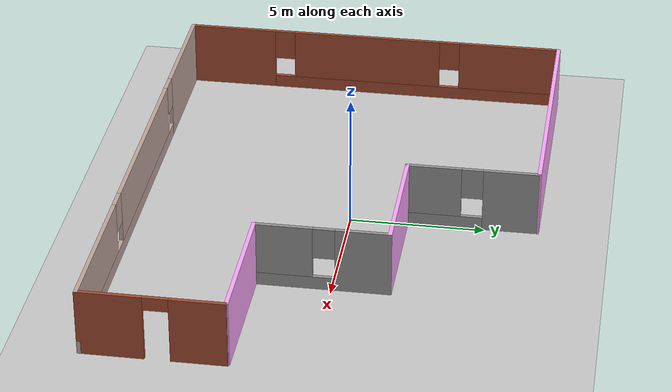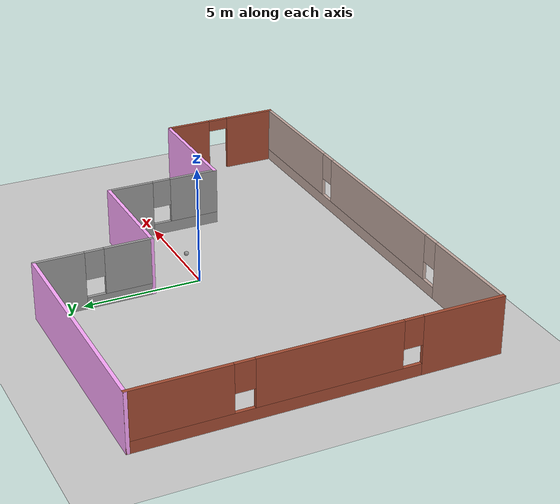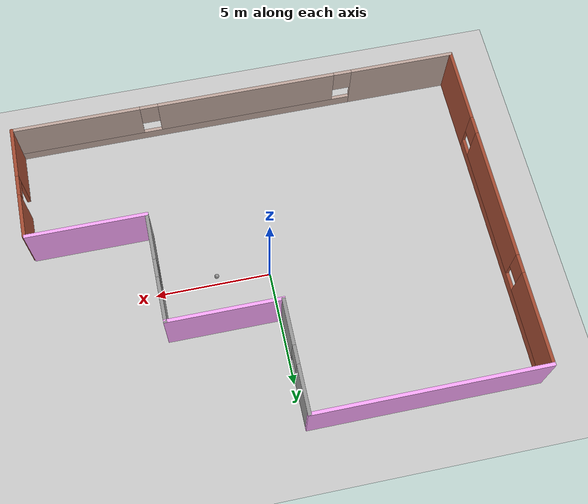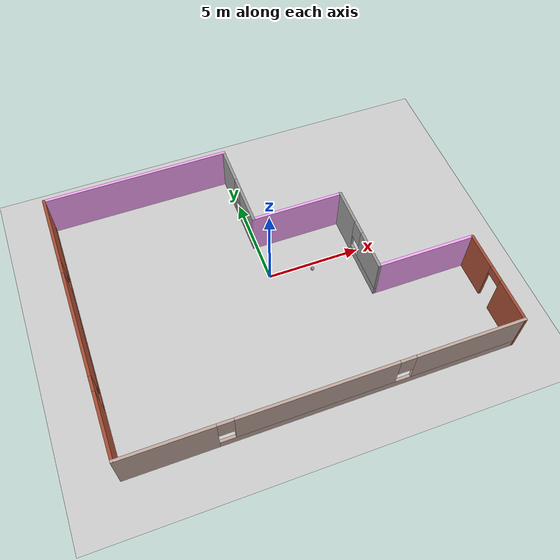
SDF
<sdf version="1.6">
 <world name="default">
  <plugin name="hello" filename="libhello.so"/>
  <light name="sun" type="directional">
   <pose>0 0 10 0 -0 0</pose>
   <diffuse>0.8 0.8 0.8 1</diffuse>
   <specular>0.2 0.2 0.2 1</specular>
   <attenuation>
    <range>1000</range>
    <constant>0.9</constant>
    <linear>0.01</linear>
    <quadratic>0.001</quadratic>
   </attenuation>
   <direction>-0.5 0.1 -0.9</direction>
  </light>
  <model name="ground_plane">
   <static>1</static>
   <link name="link">
    <collision name="collision">
     <geometry><plane><normal>0 0 1</normal><size>100 100</size></plane></geometry>
     <surface>
      <contact><collide_bitmask>65535</collide_bitmask></contact>
      <friction><ode><mu>100</mu><mu2>50</mu2></ode></friction>
     </surface>
    </collision>
    <visual name="visual">
     <cast_shadows>0</cast_shadows>
     <geometry><plane><normal>0 0 1</normal><size>100 100</size></plane></geometry>
     <material>
      <script><uri>file://media/materials/scripts/gazebo.material</uri><name>Gazebo/Grey</name></script>
     </material>
    </visual>
   </link>
  </model>
  <gravity>0 0 -9.8</gravity>
  <magnetic_field>6e-06 2.3e-05 -4.2e-05</magnetic_field>
  <atmosphere type="adiabatic"/>
  <physics name="default_physics" default="0" type="ode">
   <max_step_size>0.001</max_step_size>
   <real_time_factor>1</real_time_factor>
   <real_time_update_rate>1000</real_time_update_rate>
  </physics>
  <scene><ambient>0.4 0.4 0.4 1</ambient><background>0.7 0.7 0.7 1</background><shadows>1</shadows></scene>
  <spherical_coordinates>
   <surface_model>EARTH_WGS84</surface_model>
   <latitude_deg>0</latitude_deg>
   <longitude_deg>0</longitude_deg>
   <elevation>0</elevation>
   <heading_deg>0</heading_deg>
  </spherical_coordinates>
  <model name="STRUCTURE">
   <pose>-0.05694 -0.492989 0 0 -0 0</pose>
   <link name="Wall_0">
    <pose>-9.925 0 0 0 -0 1.57082</pose>
    <visual name="Wall_0_Visual_0">
     <pose>-5.76323 0 1.25 0 -0 0</pose>
     <geometry><box><size>3.47353 0.15 2.5</size></box></geometry>
     <material>
      <script><uri>file://media/materials/scripts/gazebo.material</uri><name>Gazebo/Bricks</name></script>
      <ambient>1 1 1 1</ambient>
     </material>
     <meta><layer>0</layer></meta>
    </visual>
    <collision name="Wall_0_Collision_0">
     <geometry><box><size>3.47353 0.15 2.5</size></box></geometry>
     <pose>-5.76323 0 1.25 0 -0 0</pose>
    </collision>
    <visual name="Wall_0_Visual_1">
     <pose>1.73676 0 0.25 0 -0 0</pose>
     <geometry><box><size>11.5265 0.15 0.5</size></box></geometry>
     <material>
      <script><uri>file://media/materials/scripts/gazebo.material</uri><name>Gazebo/Bricks</name></script>
      <ambient>1 1 1 1</ambient>
     </material>
     <meta><layer>0</layer></meta>
    </visual>
    <collision name="Wall_0_Collision_1">
     <geometry><box><size>11.5265 0.15 0.5</size></box></geometry>
     <pose>1.73676 0 0.25 0 -0 0</pose>
    </collision>
    <visual name="Wall_0_Visual_2">
     <pose>-0.28256 0 1.5 0 -0 0</pose>
     <geometry><box><size>5.88782 0.15 2</size></box></geometry>
     <material>
      <script><uri>file://media/materials/scripts/gazebo.material</uri><name>Gazebo/Bricks</name></script>
      <ambient>1 1 1 1</ambient>
     </material>
     <meta><layer>0</layer></meta>
    </visual>
    <collision name="Wall_0_Collision_2">
     <geometry><box><size>5.88782 0.15 2</size></box></geometry>
     <pose>-0.28256 0 1.5 0 -0 0</pose>
    </collision>
    <visual name="Wall_0_Visual_3">
     <pose>5.48067 0 1.5 0 -0 0</pose>
     <geometry><box><size>4.03865 0.15 2</size></box></geometry>
     <material>
      <script><uri>file://media/materials/scripts/gazebo.material</uri><name>Gazebo/Bricks</name></script>
      <ambient>1 1 1 1</ambient>
     </material>
     <meta><layer>0</layer></meta>
    </visual>
    <collision name="Wall_0_Collision_3">
     <geometry><box><size>4.03865 0.15 2</size></box></geometry>
     <pose>5.48067 0 1.5 0 -0 0</pose>
    </collision>
    <visual name="Wall_0_Visual_4">
     <pose>-3.62647 0 1.9 0 -0 0</pose>
     <geometry><box><size>0.8 0.15 1.2</size></box></geometry>
     <material>
      <script><uri>file://media/materials/scripts/gazebo.material</uri><name>Gazebo/Bricks</name></script>
      <ambient>1 1 1 1</ambient>
     </material>
     <meta><layer>0</layer></meta>
    </visual>
    <collision name="Wall_0_Collision_4">
     <geometry><box><size>0.8 0.15 1.2</size></box></geometry>
     <pose>-3.62647 0 1.9 0 -0 0</pose>
    </collision>
    <visual name="Wall_0_Visual_5">
     <pose>3.06135 0 1.9 0 -0 0</pose>
     <geometry><box><size>0.8 0.15 1.2</size></box></geometry>
     <material>
      <script><uri>file://media/materials/scripts/gazebo.material</uri><name>Gazebo/Bricks</name></script>
      <ambient>1 1 1 1</ambient>
     </material>
     <meta><layer>0</layer></meta>
    </visual>
    <collision name="Wall_0_Collision_5">
     <geometry><box><size>0.8 0.15 1.2</size></box></geometry>
     <pose>3.06135 0 1.9 0 -0 0</pose>
    </collision>
   </link>
   <link name="Wall_10">
    <collision name="Wall_10_Collision">
     <geometry><box><size>5.25 0.15 2.5</size></box></geometry>
     <pose>0 0 1.25 0 -0 0</pose>
    </collision>
    <visual name="Wall_10_Visual">
     <pose>0 0 1.25 0 -0 0</pose>
     <geometry><box><size>5.25 0.15 2.5</size></box></geometry>
     <material>
      <script><uri>file://media/materials/scripts/gazebo.material</uri><name>Gazebo/Grey</name></script>
      <ambient>1 0.666667 1 1</ambient>
     </material>
     <meta><layer>0</layer></meta>
    </visual>
    <pose>7.32518 -2.27514 0 0 -0 0</pose>
   </link>
   <link name="Wall_15">
    <pose>0.000182 -7.42514 0 0 -0 0</pose>
    <visual name="Wall_15_Visual_0">
     <pose>-7.64788 0 1.25 0 -0 0</pose>
     <geometry><box><size>4.70424 0.15 2.5</size></box></geometry>
     <material>
      <script><uri>file://media/materials/scripts/gazebo.material</uri><name>Gazebo/Grey</name></script>
      <ambient>0.760784 0.662745 0.627451 1</ambient>
     </material>
     <meta><layer>0</layer></meta>
    </visual>
    <collision name="Wall_15_Collision_0">
     <geometry><box><size>4.70424 0.15 2.5</size></box></geometry>
     <pose>-7.64788 0 1.25 0 -0 0</pose>
    </collision>
    <visual name="Wall_15_Visual_1">
     <pose>2.35212 0 0.25 0 -0 0</pose>
     <geometry><box><size>15.2958 0.15 0.5</size></box></geometry>
     <material>
      <script><uri>file://media/materials/scripts/gazebo.material</uri><name>Gazebo/Grey</name></script>
      <ambient>0.760784 0.662745 0.627451 1</ambient>
     </material>
     <meta><layer>0</layer></meta>
    </visual>
    <collision name="Wall_15_Collision_1">
     <geometry><box><size>15.2958 0.15 0.5</size></box></geometry>
     <pose>2.35212 0 0.25 0 -0 0</pose>
    </collision>
    <visual name="Wall_15_Visual_2">
     <pose>-0.508559 0 1.5 0 -0 0</pose>
     <geometry><box><size>7.97441 0.15 2</size></box></geometry>
     <material>
      <script><uri>file://media/materials/scripts/gazebo.material</uri><name>Gazebo/Grey</name></script>
      <ambient>0.760784 0.662745 0.627451 1</ambient>
     </material>
     <meta><layer>0</layer></meta>
    </visual>
    <collision name="Wall_15_Collision_2">
     <geometry><box><size>7.97441 0.15 2</size></box></geometry>
     <pose>-0.508559 0 1.5 0 -0 0</pose>
    </collision>
    <visual name="Wall_15_Visual_3">
     <pose>7.13932 0 1.5 0 -0 0</pose>
     <geometry><box><size>5.72135 0.15 2</size></box></geometry>
     <material>
      <script><uri>file://media/materials/scripts/gazebo.material</uri><name>Gazebo/Grey</name></script>
      <ambient>0.760784 0.662745 0.627451 1</ambient>
     </material>
     <meta><layer>0</layer></meta>
    </visual>
    <collision name="Wall_15_Collision_3">
     <geometry><box><size>5.72135 0.15 2</size></box></geometry>
     <pose>7.13932 0 1.5 0 -0 0</pose>
    </collision>
    <visual name="Wall_15_Visual_4">
     <pose>-4.89576 0 1.9 0 -0 0</pose>
     <geometry><box><size>0.8 0.15 1.2</size></box></geometry>
     <material>
      <script><uri>file://media/materials/scripts/gazebo.material</uri><name>Gazebo/Grey</name></script>
      <ambient>0.760784 0.662745 0.627451 1</ambient>
     </material>
     <meta><layer>0</layer></meta>
    </visual>
    <collision name="Wall_15_Collision_4">
     <geometry><box><size>0.8 0.15 1.2</size></box></geometry>
     <pose>-4.89576 0 1.9 0 -0 0</pose>
    </collision>
    <visual name="Wall_15_Visual_5">
     <pose>3.87865 0 1.9 0 -0 0</pose>
     <geometry><box><size>0.8 0.15 1.2</size></box></geometry>
     <material>
      <script><uri>file://media/materials/scripts/gazebo.material</uri><name>Gazebo/Grey</name></script>
      <ambient>0.760784 0.662745 0.627451 1</ambient>
     </material>
     <meta><layer>0</layer></meta>
    </visual>
    <collision name="Wall_15_Collision_5">
     <geometry><box><size>0.8 0.15 1.2</size></box></geometry>
     <pose>3.87865 0 1.9 0 -0 0</pose>
    </collision>
   </link>
   <link name="Wall_17">
    <pose>9.92518 -4.87514 0 0 -0 1.5708</pose>
    <visual name="Wall_17_Visual_0">
     <pose>-1.44819 0 1.25 0 -0 0</pose>
     <geometry><box><size>2.35363 0.15 2.5</size></box></geometry>
     <material>
      <script><uri>file://media/materials/scripts/gazebo.material</uri><name>Gazebo/Bricks</name></script>
      <ambient>1 1 1 1</ambient>
     </material>
     <meta><layer>0</layer></meta>
    </visual>
    <collision name="Wall_17_Collision_0">
     <geometry><box><size>2.35363 0.15 2.5</size></box></geometry>
     <pose>-1.44819 0 1.25 0 -0 0</pose>
    </collision>
    <visual name="Wall_17_Visual_1">
     <pose>1.62681 0 1.25 0 -0 0</pose>
     <geometry><box><size>1.99637 0.15 2.5</size></box></geometry>
     <material>
      <script><uri>file://media/materials/scripts/gazebo.material</uri><name>Gazebo/Bricks</name></script>
      <ambient>1 1 1 1</ambient>
     </material>
     <meta><layer>0</layer></meta>
    </visual>
    <collision name="Wall_17_Collision_1">
     <geometry><box><size>1.99637 0.15 2.5</size></box></geometry>
     <pose>1.62681 0 1.25 0 -0 0</pose>
    </collision>
    <visual name="Wall_17_Visual_2">
     <pose>0.178628 0 2.25 0 -0 0</pose>
     <geometry><box><size>0.9 0.15 0.5</size></box></geometry>
     <material>
      <script><uri>file://media/materials/scripts/gazebo.material</uri><name>Gazebo/Bricks</name></script>
      <ambient>1 1 1 1</ambient>
     </material>
     <meta><layer>0</layer></meta>
    </visual>
    <collision name="Wall_17_Collision_2">
     <geometry><box><size>0.9 0.15 0.5</size></box></geometry>
     <pose>0.178628 0 2.25 0 -0 0</pose>
    </collision>
   </link>
   <link name="Wall_2">
    <collision name="Wall_2_Collision">
     <geometry><box><size>10 0.15 2.5</size></box></geometry>
     <pose>0 0 1.25 0 -0 0</pose>
    </collision>
    <visual name="Wall_2_Visual">
     <pose>0 0 1.25 0 -0 0</pose>
     <geometry><box><size>10 0.15 2.5</size></box></geometry>
     <material>
      <script><uri>file://media/materials/scripts/gazebo.material</uri><name>Gazebo/Grey</name></script>
      <ambient>1 0.666667 1 1</ambient>
     </material>
     <meta><layer>0</layer></meta>
    </visual>
    <pose>-5.00018 7.42514 0 0 -0 0</pose>
   </link>
   <link name="Wall_4">
    <pose>-0.074999 5 0 0 0 -1.57072</pose>
    <visual name="Wall_4_Visual_0">
     <pose>-1.44372 0 1.25 0 -0 0</pose>
     <geometry><box><size>2.11257 0.15 2.5</size></box></geometry>
     <material>
      <script><uri>file://media/materials/scripts/gazebo.material</uri><name>Gazebo/Grey</name></script>
      <ambient>1 1 1 1</ambient>
     </material>
     <meta><layer>0</layer></meta>
    </visual>
    <collision name="Wall_4_Collision_0">
     <geometry><box><size>2.11257 0.15 2.5</size></box></geometry>
     <pose>-1.44372 0 1.25 0 -0 0</pose>
    </collision>
    <visual name="Wall_4_Visual_1">
     <pose>1.05628 0 0.25 0 -0 0</pose>
     <geometry><box><size>2.88743 0.15 0.5</size></box></geometry>
     <material>
      <script><uri>file://media/materials/scripts/gazebo.material</uri><name>Gazebo/Grey</name></script>
      <ambient>1 1 1 1</ambient>
     </material>
     <meta><layer>0</layer></meta>
    </visual>
    <collision name="Wall_4_Collision_1">
     <geometry><box><size>2.88743 0.15 0.5</size></box></geometry>
     <pose>1.05628 0 0.25 0 -0 0</pose>
    </collision>
    <visual name="Wall_4_Visual_2">
     <pose>1.45628 0 1.5 0 -0 0</pose>
     <geometry><box><size>2.08743 0.15 2</size></box></geometry>
     <material>
      <script><uri>file://media/materials/scripts/gazebo.material</uri><name>Gazebo/Grey</name></script>
      <ambient>1 1 1 1</ambient>
     </material>
     <meta><layer>0</layer></meta>
    </visual>
    <collision name="Wall_4_Collision_2">
     <geometry><box><size>2.08743 0.15 2</size></box></geometry>
     <pose>1.45628 0 1.5 0 -0 0</pose>
    </collision>
    <visual name="Wall_4_Visual_3">
     <pose>0.012568 0 1.9 0 -0 0</pose>
     <geometry><box><size>0.8 0.15 1.2</size></box></geometry>
     <material>
      <script><uri>file://media/materials/scripts/gazebo.material</uri><name>Gazebo/Grey</name></script>
      <ambient>1 1 1 1</ambient>
     </material>
     <meta><layer>0</layer></meta>
    </visual>
    <collision name="Wall_4_Collision_3">
     <geometry><box><size>0.8 0.15 1.2</size></box></geometry>
     <pose>0.012568 0 1.9 0 -0 0</pose>
    </collision>
   </link>
   <link name="Wall_6">
    <collision name="Wall_6_Collision">
     <geometry><box><size>5 0.15 2.5</size></box></geometry>
     <pose>0 0 1.25 0 -0 0</pose>
    </collision>
    <visual name="Wall_6_Visual">
     <pose>0 0 1.25 0 -0 0</pose>
     <geometry><box><size>5 0.15 2.5</size></box></geometry>
     <material>
      <script><uri>file://media/materials/scripts/gazebo.material</uri><name>Gazebo/Grey</name></script>
      <ambient>1 0.666667 1 1</ambient>
     </material>
     <meta><layer>0</layer></meta>
    </visual>
    <pose>2.35018 2.57486 0 0 -0 0</pose>
   </link>
   <link name="Wall_8">
    <pose>4.77518 0.149856 0 0 0 -1.5708</pose>
    <visual name="Wall_8_Visual_0">
     <pose>-1.48793 0 1.25 0 -0 0</pose>
     <geometry><box><size>2.02414 0.15 2.5</size></box></geometry>
     <material>
      <script><uri>file://media/materials/scripts/gazebo.material</uri><name>Gazebo/Grey</name></script>
      <ambient>1 1 1 1</ambient>
     </material>
     <meta><layer>0</layer></meta>
    </visual>
    <collision name="Wall_8_Collision_0">
     <geometry><box><size>2.02414 0.15 2.5</size></box></geometry>
     <pose>-1.48793 0 1.25 0 -0 0</pose>
    </collision>
    <visual name="Wall_8_Visual_1">
     <pose>1.01207 0 0.25 0 -0 0</pose>
     <geometry><box><size>2.97586 0.15 0.5</size></box></geometry>
     <material>
      <script><uri>file://media/materials/scripts/gazebo.material</uri><name>Gazebo/Grey</name></script>
      <ambient>1 1 1 1</ambient>
     </material>
     <meta><layer>0</layer></meta>
    </visual>
    <collision name="Wall_8_Collision_1">
     <geometry><box><size>2.97586 0.15 0.5</size></box></geometry>
     <pose>1.01207 0 0.25 0 -0 0</pose>
    </collision>
    <visual name="Wall_8_Visual_2">
     <pose>1.41207 0 1.5 0 -0 0</pose>
     <geometry><box><size>2.17586 0.15 2</size></box></geometry>
     <material>
      <script><uri>file://media/materials/scripts/gazebo.material</uri><name>Gazebo/Grey</name></script>
      <ambient>1 1 1 1</ambient>
     </material>
     <meta><layer>0</layer></meta>
    </visual>
    <collision name="Wall_8_Collision_2">
     <geometry><box><size>2.17586 0.15 2</size></box></geometry>
     <pose>1.41207 0 1.5 0 -0 0</pose>
    </collision>
    <visual name="Wall_8_Visual_3">
     <pose>-0.075858 0 1.9 0 -0 0</pose>
     <geometry><box><size>0.8 0.15 1.2</size></box></geometry>
     <material>
      <script><uri>file://media/materials/scripts/gazebo.material</uri><name>Gazebo/Grey</name></script>
      <ambient>1 1 1 1</ambient>
     </material>
     <meta><layer>0</layer></meta>
    </visual>
    <collision name="Wall_8_Collision_3">
     <geometry><box><size>0.8 0.15 1.2</size></box></geometry>
     <pose>-0.075858 0 1.9 0 -0 0</pose>
    </collision>
   </link>
   <static>1</static>
  </model>
  <model name="my_ball">
   <link name="link_0">
    <inertial>
     <mass>1</mass>
     <inertia><ixx>0.1</ixx><ixy>0</ixy><ixz>0</ixz><iyy>0.1</iyy><iyz>0</iyz><izz>0.1</izz></inertia>
    </inertial>
    <visual name="visual">
     <geometry><sphere><radius>0.1</radius></sphere></geometry>
     <material>
      <lighting>1</lighting>
      <script><uri>file://media/materials/scripts/gazebo.material</uri><name>Gazebo/Grey</name></script>
      <shader type="pixel"><normal_map>__default__</normal_map></shader>
      <ambient>1 1 1 1</ambient>
      <diffuse>1 1 1 1</diffuse>
      <specular>1 1 1 1</specular>
      <emissive>0 0 0 1</emissive>
     </material>
    </visual>
    <collision name="collision">
     <geometry><sphere><radius>0.1</radius></sphere></geometry>
     <surface>
      <friction>
       <ode><mu>1</mu><mu2>1</mu2><fdir1>0 0 0</fdir1><slip1>0</slip1><slip2>0</slip2></ode>
       <torsional>
        <coefficient>1</coefficient>
        <patch_radius>0</patch_radius>
        <surface_radius>0</surface_radius>
        <use_patch_radius>1</use_patch_radius>
        <ode><slip>0</slip></ode>
       </torsional>
      </friction>
      <bounce><restitution_coefficient>0</restitution_coefficient><threshold>1e+06</threshold></bounce>
      <contact>
       <collide_without_contact>0</collide_without_contact>
       <collide_without_contact_bitmask>1</collide_without_contact_bitmask>
       <collide_bitmask>1</collide_bitmask>
       <ode>
        <soft_cfm>0</soft_cfm>
        <soft_erp>0.2</soft_erp>
        <kp>1e+13</kp>
        <kd>1</kd>
        <max_vel>0.01</max_vel>
        <min_depth>0</min_depth>
       </ode>
       <bullet>
        <split_impulse>1</split_impulse>
        <split_impulse_penetration_threshold>-0.01</split_impulse_penetration_threshold>
        <soft_cfm>0</soft_cfm>
        <soft_erp>0.2</soft_erp>
        <kp>1e+13</kp>
        <kd>1</kd>
       </bullet>
      </contact>
     </surface>
    </collision>
   </link>
   <static>0</static>
   <pose>2.27258 -0.362263 0.1 -1.75969 -0.105529 0.083695</pose>
  </model>
 </world>
</sdf>
